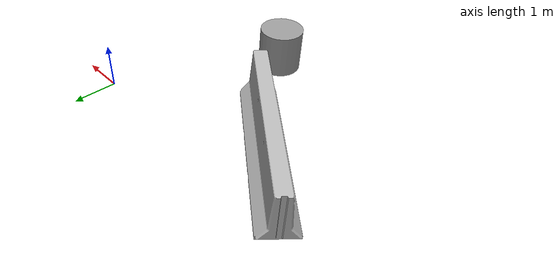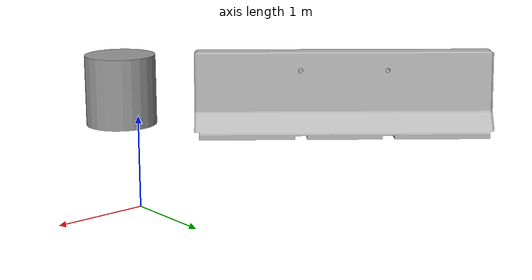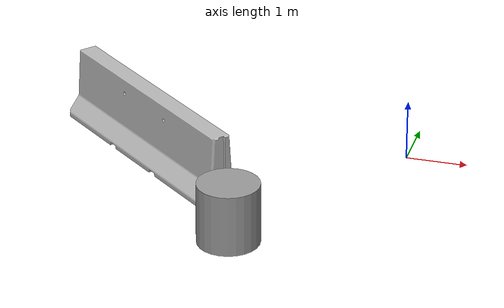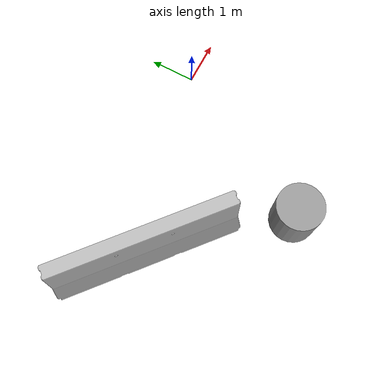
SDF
<sdf version="1.6">
 <world name="default">
  <model name="jersey_barrier">
   <static>1</static>
   <link name="link">
    <visual name="visual">
     <geometry>
      <mesh><uri>model://jersey_barrier/meshes/jersey_barrier.dae</uri><scale>1 1 1</scale></mesh>
     </geometry>
    </visual>
    <collision name="upright">
     <pose>0 0 0.5715 0 -0 0</pose>
     <geometry><box><size>4.06542 0.3063 1.143</size></box></geometry>
    </collision>
    <collision name="base">
     <pose>0 0 0.032258 0 -0 0</pose>
     <geometry><box><size>4.06542 0.8107 0.064516</size></box></geometry>
    </collision>
    <collision name="base2">
     <pose>0 0 0.1 0 -0 0</pose>
     <geometry><box><size>4.06542 0.65 0.1</size></box></geometry>
    </collision>
    <collision name="base3">
     <pose>0 0 0.2 0 -0 0</pose>
     <geometry><box><size>4.06542 0.5 0.1</size></box></geometry>
    </collision>
    <collision name="left-angle">
     <pose>0 -0.224 0.2401 0.9 -0 0</pose>
     <geometry><box><size>4.06542 0.5 0.064516</size></box></geometry>
    </collision>
    <collision name="right-angle">
     <pose>0 0.224 0.2401 -0.9 0 0</pose>
     <geometry><box><size>4.06542 0.5 0.064516</size></box></geometry>
    </collision>
    <velocity_decay><linear>0</linear><angular>0</angular></velocity_decay>
   </link>
   <pose>-4 -1 0 0 0 -0.7</pose>
  </model>
  <model name="unit_cylinder_1">
   <pose>-2 -3.4888 0.49912 0 -0 0</pose>
   <link name="link">
    <inertial>
     <mass>1</mass>
     <inertia><ixx>1</ixx><ixy>0</ixy><ixz>0</ixz><iyy>1</iyy><iyz>0</iyz><izz>1</izz></inertia>
    </inertial>
    <collision name="collision">
     <geometry><cylinder><radius>0.5</radius><length>1</length></cylinder></geometry>
    </collision>
    <visual name="visual">
     <geometry><cylinder><radius>0.5</radius><length>1</length></cylinder></geometry>
     <material>
      <script><uri>file://media/materials/scripts/gazebo.material</uri><name>Gazebo/Grey</name></script>
     </material>
    </visual>
    <velocity_decay><linear>0</linear><angular>0</angular></velocity_decay>
   </link>
   <static>0</static>
  </model>
 </world>
</sdf>
